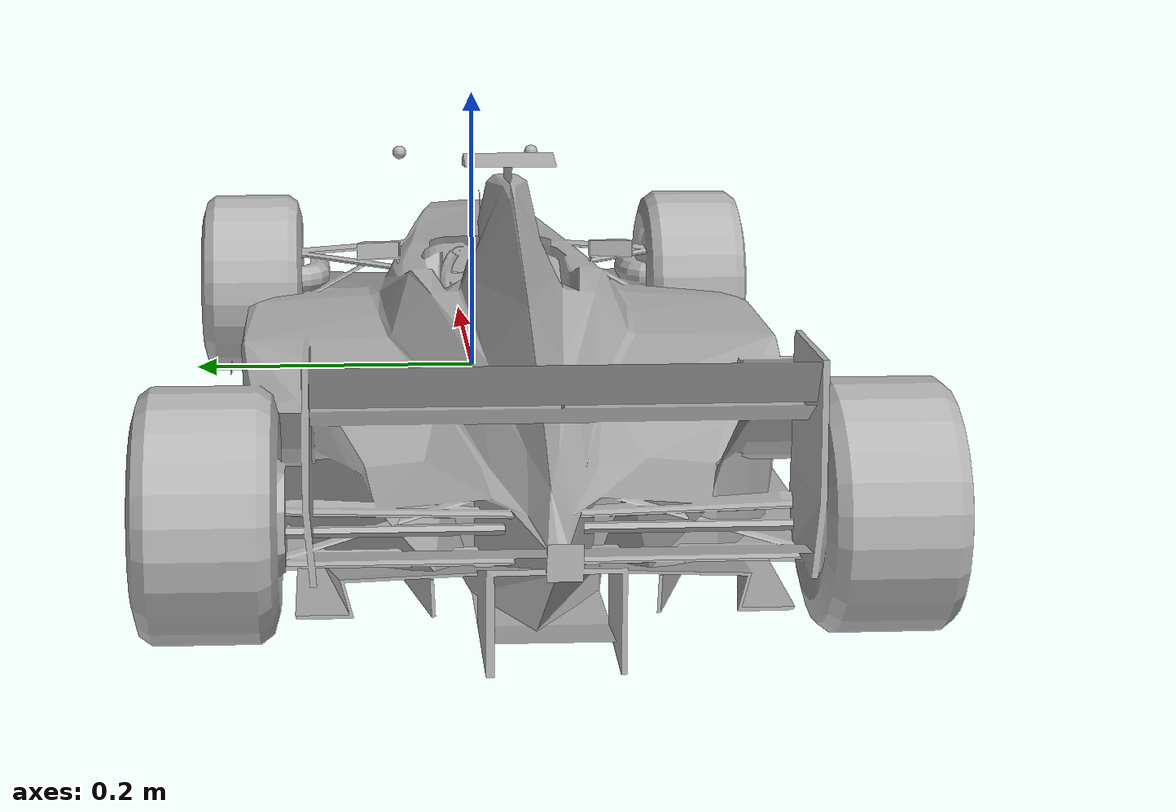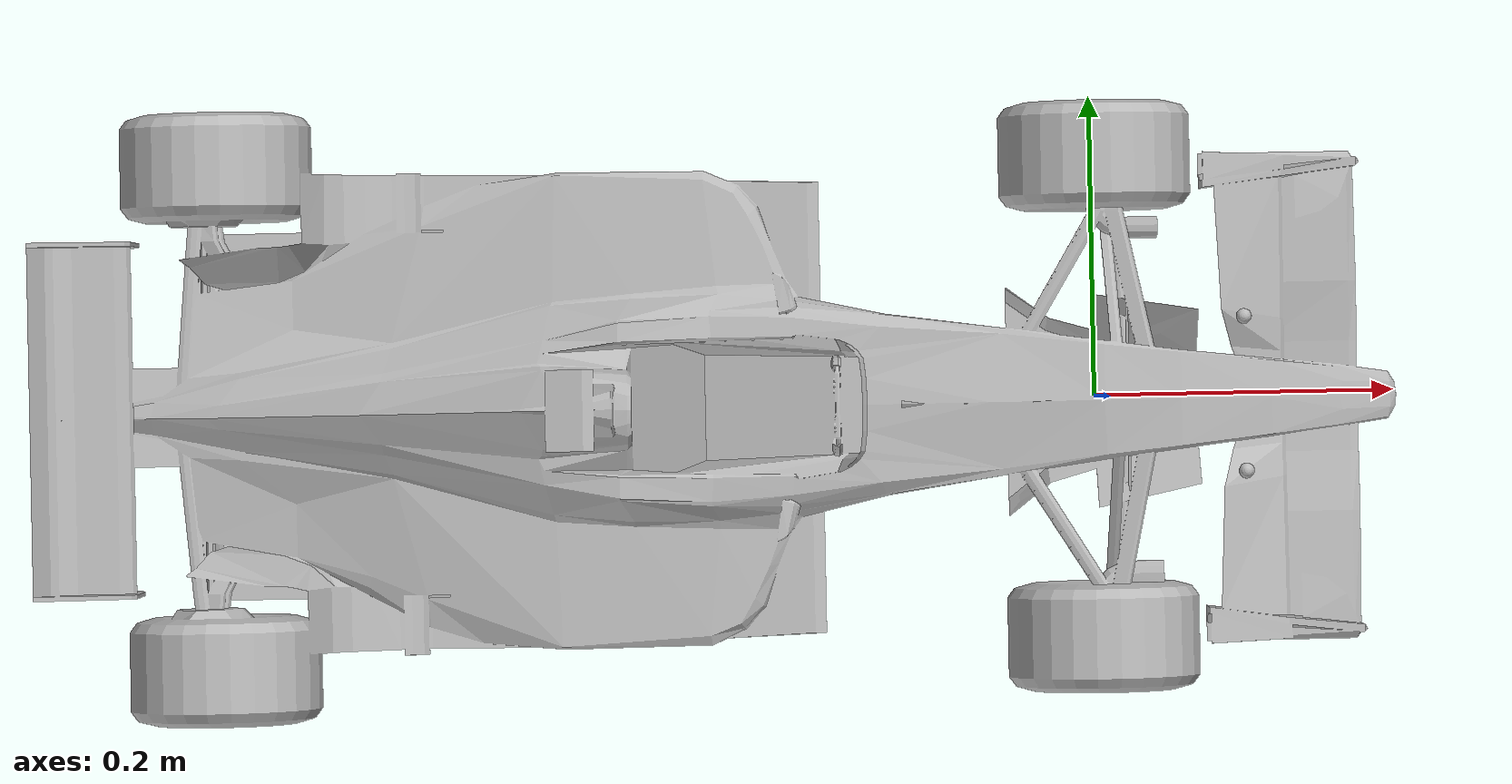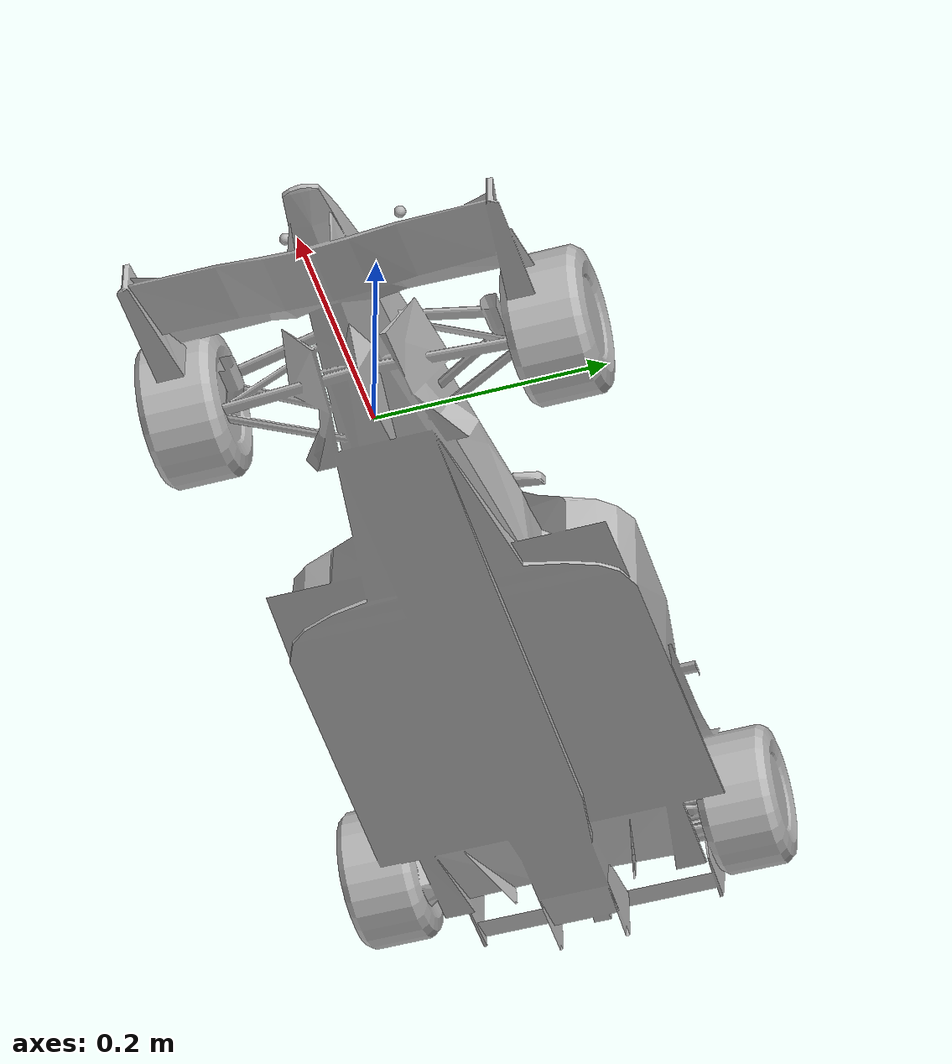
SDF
<?xml version='1.0'?>
<sdf version="1.4">
<model name="f1">
  <pose>0 0 0 0 0 0</pose>
  <static>false</static>
    <link name="f1">
    	<pose>0 0 0 0 0 0</pose>
	<inertial>
        <mass>10</mass>
        <inertia>
          <ixx>1</ixx>
          <ixy>0.0</ixy>
          <iyy>1</iyy>
          <ixz>0.0</ixz>
          <iyz>0.0</iyz>
          <izz>1.0</izz>
      </inertia>
    </inertial>

      <collision name="collision">
            <geometry>
              <mesh>
            		<uri>model://f1/meshes/F1.dae</uri>
          		</mesh>
          </geometry>
     </collision>
      <visual name="visual">
        <geometry>
          <mesh>
            <uri>model://f1/meshes/F1.dae</uri>
        </mesh>
      </geometry>
    </visual>
  </link>
    <link name="front_right_wheel">
        <pose>0 -0.16 0.06 0 1.5707 0</pose>
         <inertial>
        <mass>1</mass>
        <inertia>
          <ixx>0.5</ixx>
          <ixy>0.0</ixy>
          <iyy>0.5</iyy>
          <ixz>0.0</ixz>
          <iyz>0.0</iyz>
          <izz>1.0</izz>
      </inertia>
    </inertial>

        <collision name="collision">
          <geometry>
            <cylinder>
              <radius>.06</radius>
              <length>.07</length>
          </cylinder>
        </geometry>
      </collision>

    </link>
      <link name="front_left_wheel">
        <pose>0 0.16 0.06 0 1.5707 0</pose>
        <inertial>
        <mass>1</mass>
        <inertia>
          <ixx>0.5</ixx>
          <ixy>0.0</ixy>
          <iyy>0.5</iyy>
          <ixz>0.0</ixz>
          <iyz>0.0</iyz>
          <izz>1.0</izz>
      </inertia>
    </inertial>
        <collision name="collision">
          <geometry>
            <cylinder>
              <radius>.06</radius>
              <length>.07</length>
          </cylinder>
        </geometry>
      </collision>
    </link>

      <link name="front_left_steering_wheel_block">
        <pose>0 0.16 0.06 0 1.5707 0</pose>
        <inertial>
        <mass>1</mass>
        <inertia>
          <ixx>1.0</ixx>
          <ixy>0.0</ixy>
          <iyy>1.0</iyy>
          <ixz>0.0</ixz>
          <iyz>0.0</iyz>
          <izz>1.0</izz>
      </inertia>
    </inertial>

        <collision name="collision">
          <geometry>
            <cylinder>
              <radius>0.05</radius>
              <length>0.1</length>
          </cylinder>
        </geometry>
      </collision>

		</link>

        <link name="front_right_steering_wheel_block">
        <pose>0 -0.16 0.06 0 1.5707 0</pose>
        <inertial>
        <mass>1</mass>
        <inertia>
          <ixx>1.0</ixx>
          <ixy>0.0</ixy>
          <iyy>1.0</iyy>
          <ixz>0.0</ixz>
          <iyz>0.0</iyz>
          <izz>1.0</izz>
      </inertia>
    </inertial>

        <collision name="collision">
          <geometry>
            <cylinder>
              <radius>0.05</radius>
              <length>0.1</length>
          </cylinder>
        </geometry>
      </collision>

    </link>
      <link name="rear_left_wheel">
        <pose>-0.58 0.16 0.06 0 1.5707 0</pose>
         <inertial>
        <mass>1</mass>
        <inertia>
          <ixx>0.5</ixx>
          <ixy>0.0</ixy>
          <iyy>0.5</iyy>
          <ixz>0.0</ixz>
          <iyz>0.0</iyz>
          <izz>1.0</izz>
      </inertia>
      </inertial>
        <collision name="collision">

          <geometry>
            <cylinder>
              <radius>.06</radius>
              <length>.07</length>
          </cylinder>
        </geometry>

          <max_contacts>1</max_contacts>
        <surface>
          <friction>
            <ode>
              <mu>1.0</mu>
              <mu2>1.0</mu2>
              <fdir1>0 0 1</fdir1>
              <slip1>0.0</slip1>
              <slip2>0.0</slip2>
          </ode>
        </friction>
          <contact>
            <ode>
              <min_depth>0.005</min_depth>
              <kp>1e8</kp>
          </ode>
        </contact>
      </surface>
      </collision>

    </link>

      <link name="rear_right_wheel">
        <pose>-0.58 -0.16 0.06 0 1.5707 0</pose>
         <inertial>
        <mass>1</mass>
        <inertia>
          <ixx>0.5</ixx>
          <ixy>0.0</ixy>
          <iyy>0.5</iyy>
          <ixz>0.0</ixz>
          <iyz>0.0</iyz>
          <izz>1.0</izz>
      </inertia>
      </inertial>
        <collision name="collision">

          <geometry>
            <cylinder>
              <radius>.06</radius>
              <length>.07</length>
          </cylinder>
        </geometry>

          <max_contacts>1</max_contacts>
        <surface>
          <friction>
            <ode>
              <mu>1.0</mu>
              <mu2>1.0</mu2>
              <fdir1>0 0 1</fdir1>
              <slip1>0.0</slip1>
              <slip2>0.0</slip2>
          </ode>
        </friction>
          <contact>
            <ode>
              <min_depth>0.005</min_depth>
              <kp>1e8</kp>
          </ode>
        </contact>
      </surface>
      </collision>

    </link>

<link name='camera_top_body_left'>
        <pose>0.09000 0.050000 0.1442400 0.000000 -0.000000 0.000000</pose>
        <inertial>
          <mass>2</mass>
          <inertia>
            <ixx>1.000000</ixx>
            <ixy>0.000000</ixy>
            <ixz>0.000000</ixz>
            <iyy>1.000000</iyy>
            <iyz>0.000000</iyz>
            <izz>1.000000</izz>
        </inertia>
      </inertial>
        <sensor name='cam_f1_left' type='camera'>
          <pose>0.000000 0.000000 0.000000  0.00000 0.00000 0.00000</pose>
          <update_rate>20.000000</update_rate>
          <camera name='cleft'>
            <horizontal_fov>1.570000</horizontal_fov>
            <image>
              <width>640</width>
              <height>480</height>
              <format>R8G8B8</format>
          </image>
            <clip>
              <near>0.100000</near>
              <far>15.000000</far>
          </clip>
        </camera>
		<plugin name="camera_controller_left" filename="libgazebo_ros_camera.so">
			<alwaysOn>true</alwaysOn>
			<updateRate>0.0</updateRate>
			<cameraName>F1ROS/cameraL</cameraName>
			<imageTopicName>image_raw</imageTopicName>
			<cameraInfoTopicName>camera_info</cameraInfoTopicName>
			<frameName>camera_top_body_left</frameName>
			<hackBaseline>0.07</hackBaseline>
			<distortionK1>0.0</distortionK1>
			<distortionK2>0.0</distortionK2>
			<distortionK3>0.0</distortionK3>
			<distortionT1>0.0</distortionT1>
			<distortionT2>0.0</distortionT2>
		</plugin>
      </sensor>
        <visual name='visual'>
          <geometry>
<sphere>
                          <radius>.005</radius>
</sphere>
        </geometry>
      </visual>
        <collision name='collision'>
          <geometry>
            <box>
              <size>0.100000 0.100000 0.100000</size>
          </box>
        </geometry>
          <surface>
            <friction>
              <ode>
                <mu>100000.000000</mu>
                <mu2>100000.000000</mu2>
                <slip1>0.000000</slip1>
                <slip2>0.000000</slip2>
            </ode>
          </friction>
            <bounce/>
            <contact>
              <ode/>
          </contact>
        </surface>
          <max_contacts>10</max_contacts>
      </collision>
        <velocity_decay>
          <linear>0.000000</linear>
          <angular>0.000000</angular>
      </velocity_decay>
        <self_collide>0</self_collide>
        <kinematic>0</kinematic>
        <gravity>1</gravity>
    </link>

<link name='camera_top_body_right'>
        <pose>0.09000 -0.050000 0.1442400 0.000000 -0.000000 0.0000000</pose>
        <inertial>
          <mass>2</mass>
          <inertia>
            <ixx>1.000000</ixx>
            <ixy>0.000000</ixy>
            <ixz>0.000000</ixz>
            <iyy>1.000000</iyy>
            <iyz>0.000000</iyz>
            <izz>1.000000</izz>
        </inertia>
      </inertial>
        <sensor name='cam_f1_right' type='camera'>
          <pose>0.000000 0.000000 0.000000 0.000000 0.00000 0.00000</pose>
          <update_rate>20.000000</update_rate>
          <camera name='cright'>
            <horizontal_fov>1.570000</horizontal_fov>
            <image>
              <width>640</width>
              <height>480</height>
              <format>R8G8B8</format>
          </image>
            <clip>
              <near>0.100000</near>
              <far>15.000000</far>
          </clip>
        </camera>
		<plugin name="camera_controller_right" filename="libgazebo_ros_camera.so">
			<alwaysOn>true</alwaysOn>
			<updateRate>0.0</updateRate>
			<cameraName>F1ROS/cameraR</cameraName>
			<imageTopicName>image_raw</imageTopicName>
			<cameraInfoTopicName>camera_info</cameraInfoTopicName>
			<frameName>camera_top_body_right</frameName>
			<hackBaseline>0.07</hackBaseline>
			<distortionK1>0.0</distortionK1>
			<distortionK2>0.0</distortionK2>
			<distortionK3>0.0</distortionK3>
			<distortionT1>0.0</distortionT1>
			<distortionT2>0.0</distortionT2>
		</plugin>
      </sensor>
        <visual name='visual'>
         <geometry>
<sphere>
                          <radius>.005</radius>
</sphere>
        </geometry>
      </visual>
        <collision name='collision'>
          <geometry>
            <box>
              <size>0.100000 0.100000 0.100000</size>
          </box>
        </geometry>
          <surface>
            <friction>
              <ode>
                <mu>100000.000000</mu>
                <mu2>100000.000000</mu2>
                <slip1>0.000000</slip1>
                <slip2>0.000000</slip2>
            </ode>
          </friction>
            <bounce/>
            <contact>
              <ode/>
          </contact>
        </surface>
          <max_contacts>10</max_contacts>
      </collision>
        <velocity_decay>
          <linear>0.000000</linear>
          <angular>0.000000</angular>
      </velocity_decay>
        <self_collide>0</self_collide>
        <kinematic>0</kinematic>
        <gravity>1</gravity>
    </link>

       <joint type="revolute" name="front_left_wheel_hinge">
        <pose>0 0 0 0 0 0</pose>
        <child>front_left_wheel</child>
        <parent>front_left_steering_wheel_block</parent>
        <axis>
          <xyz>1 0 0</xyz>
      </axis>
    </joint>
      <joint type="revolute" name="front_right_wheel_hinge">
        <pose>0 0 0 0 0 0</pose>
        <child>front_right_wheel</child>
        <parent>front_right_steering_wheel_block</parent>
        <axis>
          <xyz>1 0 0</xyz>
      </axis>
    </joint>

 	  <joint type="revolute" name="camera_left">
        <pose>0 0 0 0 0 0</pose>
        <child>camera_top_body_left</child>
        <parent>f1</parent>
        <axis>
          <xyz>0 0 0</xyz>
      </axis>
    </joint>

	  <joint type="revolute" name="camera_right">
        <pose>0 0 0 0 0 0</pose>
        <child>camera_top_body_right</child>
        <parent>f1</parent>
        <axis>
          <xyz>0 0 0</xyz>
      </axis>
    </joint>

      <joint type="revolute" name="front_left_steering_wheel">
        <pose>0 0 0 0 0 0</pose>
        <child>front_left_steering_wheel_block</child>
        <parent>f1</parent>
        <axis>
        	 <xyz>0 0 1</xyz>
  	 			<dynamics>
          		<damping>500.0</damping>
        		</dynamics>
        	 <limit>
        	 		<lower>-0.52359</lower>
              <upper>0.52359</upper>
        </limit>
      </axis>
        <physics>
        <ode>
          <cfm_damping>1</cfm_damping>
          <limit>
            <cfm>0.000000</cfm>
            <erp>0.900000</erp>
        </limit>
      </ode>
    </physics>
    </joint>
      <joint type="revolute" name="front_right_steering_wheel">
        <pose>0 0 0 0 0 0</pose>
        <child>front_right_steering_wheel_block</child>
        <parent>f1</parent>
        <axis>
        <xyz>0 0 1</xyz>
        		<dynamics>
          		<damping>500.0</damping>
        		</dynamics>
     		 <limit>
              <lower>-0.52359</lower>
              <upper>0.52359</upper>
        </limit>
      </axis>
        <physics>
        <ode>
          <cfm_damping>1</cfm_damping>
          <limit>
            <cfm>0.000000</cfm>
            <erp>0.900000</erp>
        </limit>
      </ode>
    </physics>
    </joint>

      <joint type="revolute" name="rear_right_wheel_hinge">
        <pose>0 0 0 0 0 0</pose>
        <child>rear_right_wheel</child>
        <parent>f1</parent>
        <axis>
          <xyz>1 0 0</xyz>
      </axis>
    </joint>

      <joint type="revolute" name="rear_left_wheel_hinge">
        <pose>0 0 0 0 0 0</pose>
        <child>rear_left_wheel</child>
        <parent>f1</parent>
        <axis>
          <xyz>1 0 0</xyz>
      </axis>
    </joint>
    <plugin name="object_controller" filename="libgazebo_ros_planar_move.so">
      <commandTopic>F1ROS/cmd_vel</commandTopic>
      <odometryTopic>F1ROS/odom</odometryTopic>
      <odometryFrame>odom</odometryFrame>
      <odometryRate>20.0</odometryRate>
      <robotBaseFrame>f1</robotBaseFrame>
    </plugin>
</model>
</sdf>
